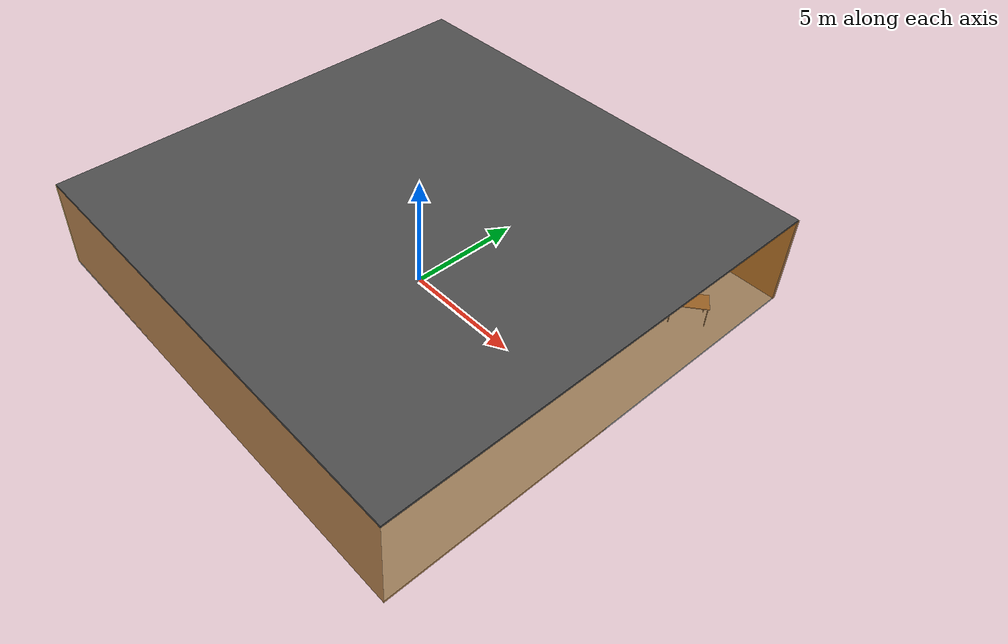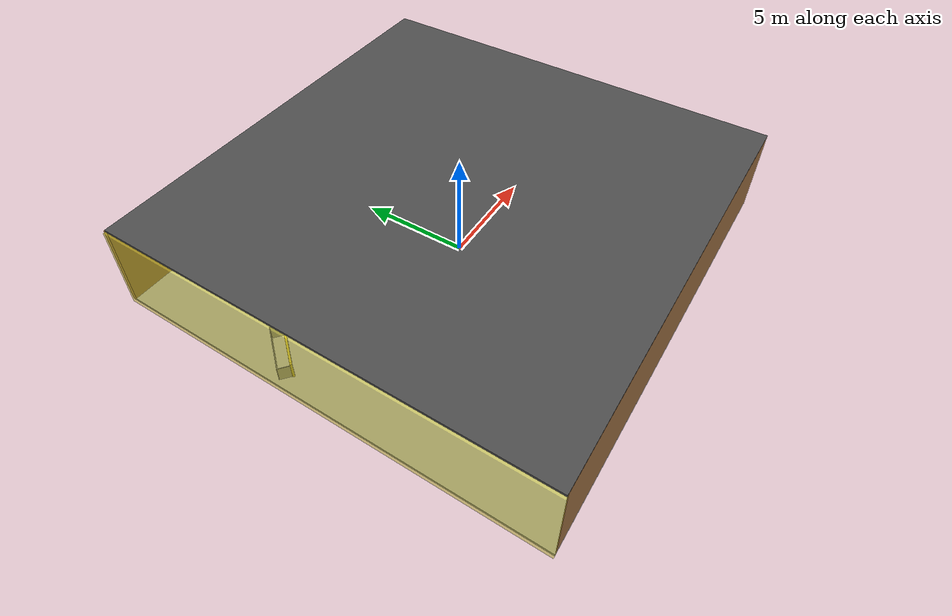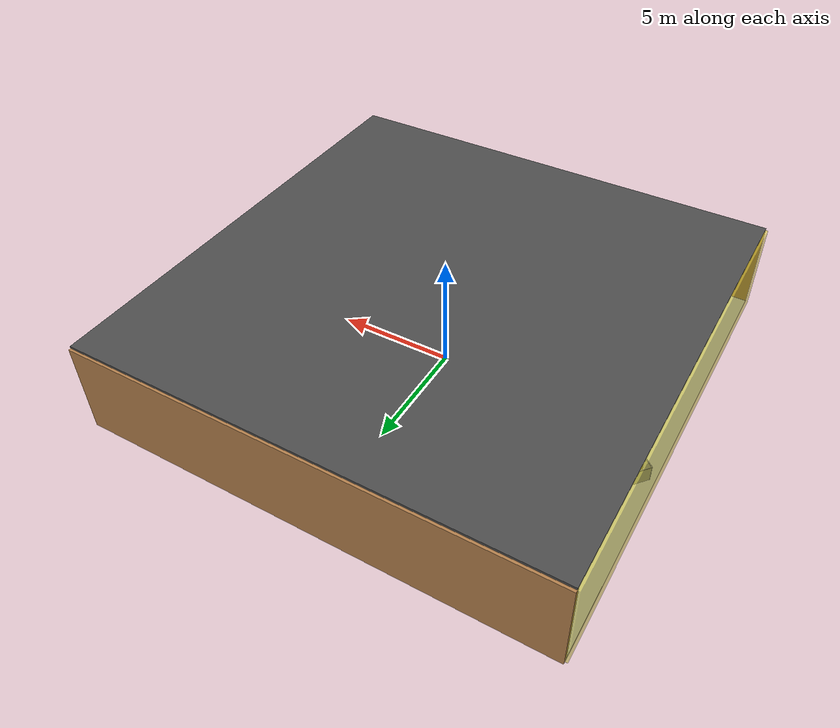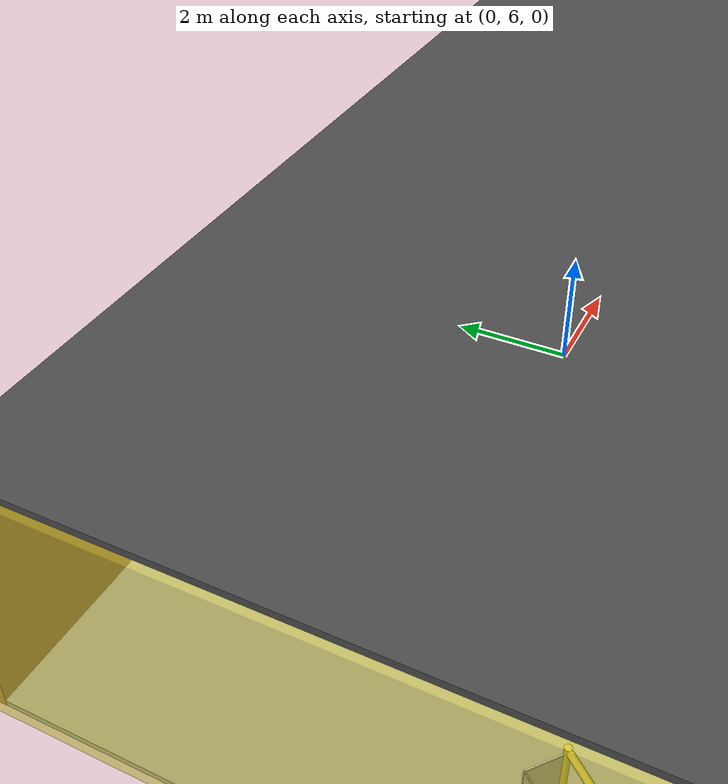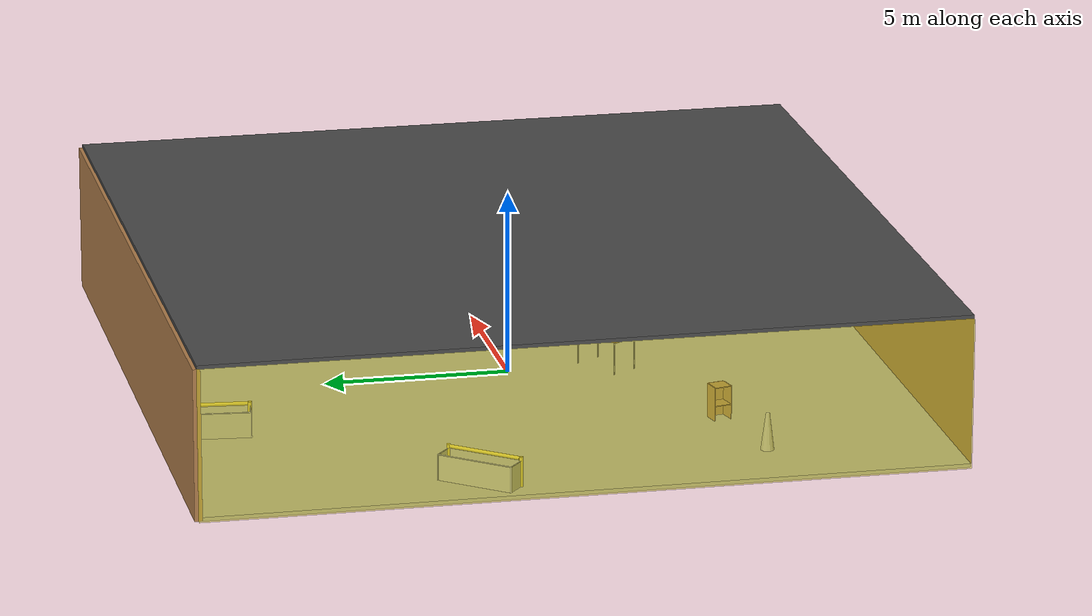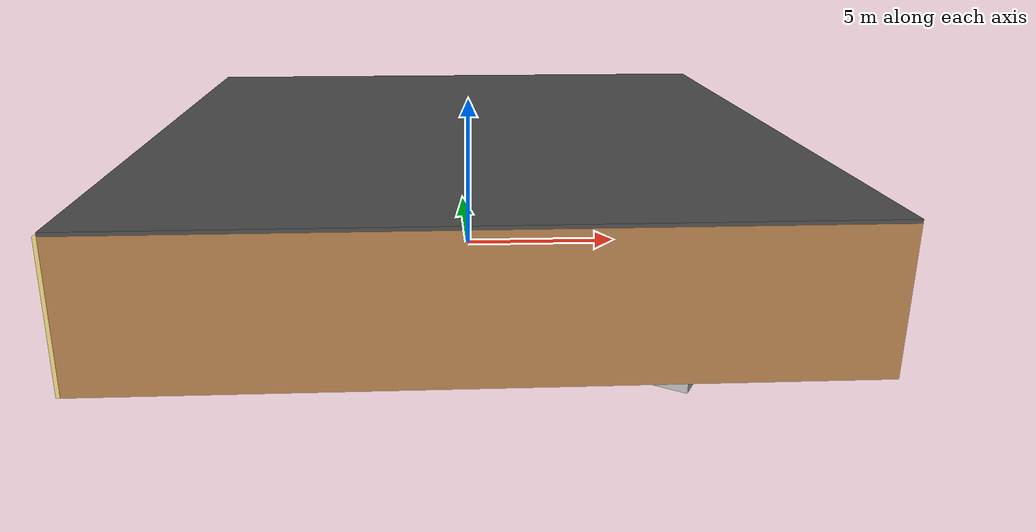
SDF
<sdf version="1.4">
 <world name="default">
  <physics type="ode">
   <max_step_size>0.001</max_step_size>
   <real_time_factor>1</real_time_factor>
   <real_time_update_rate>1000</real_time_update_rate>
   <gravity>0 0 -9.8</gravity>
  </physics>
  <scene><ambient>0.4 0.4 0.4 1</ambient><background>0.7 0.7 0.7 1</background><shadows>1</shadows></scene>
  <model name="Surrounding">
   <static>1</static>
   <link name="Ceiling">
    <collision name="Ceiling_Collision"><geometry><box><size>20 20 0.1</size></box></geometry></collision>
    <visual name="Ceiling_Visual">
     <geometry><box><size>20 20 0.1</size></box></geometry>
     <material>
      <script><uri>file://media/materials/scripts/gazebo.material</uri><name>Gazebo/DarkGrey</name></script>
     </material>
    </visual>
    <pose>0 0 4.05 0 0 0</pose>
   </link>
   <link name="Wall_South">
    <collision name="Wall_South_Collision">
     <geometry><box><size>20 0 4</size></box></geometry>
     <pose>0 0 2 0 -0 0</pose>
    </collision>
    <visual name="Wall_South_Visual">
     <pose>0 0 2 0 -0 0</pose>
     <geometry><box><size>20 0 4</size></box></geometry>
     <material>
      <script><uri>file://media/materials/scripts/gazebo.material</uri><name>Gazebo/WoodPallet</name></script>
     </material>
    </visual>
    <velocity_decay><linear>0</linear><angular>0</angular></velocity_decay>
    <pose>0 -10 0 0 -0 0</pose>
   </link>
   <link name="Wall_East">
    <collision name="Wall_21_Collision">
     <geometry><box><size>20 0 4</size></box></geometry>
     <pose>0 0 2 0 -0 0</pose>
    </collision>
    <visual name="Wall_21_Visual">
     <pose>0 0 2 0 -0 0</pose>
     <geometry><box><size>20 0 4</size></box></geometry>
     <material>
      <script>
       <uri>file://media/materials/scripts/gazebo.material</uri>
       <name>Gazebo/OrangeTransparent</name>
      </script>
     </material>
    </visual>
    <velocity_decay><linear>0</linear><angular>0</angular></velocity_decay>
    <pose>10 0 0 0 -0 1.5708</pose>
   </link>
   <link name="Wall_North">
    <collision name="Wall_22_Collision">
     <geometry><box><size>20 0.2 4</size></box></geometry>
     <pose>0 0 2 0 -0 0</pose>
    </collision>
    <visual name="Wall_22_Visual">
     <pose>0 0 2 0 -0 0</pose>
     <geometry><box><size>20 0.2 4</size></box></geometry>
     <material>
      <script><uri>file://media/materials/scripts/gazebo.material</uri><name>Gazebo/Wood</name></script>
     </material>
    </visual>
    <velocity_decay><linear>0</linear><angular>0</angular></velocity_decay>
    <pose>0 10 0 0 -0 0</pose>
   </link>
   <link name="Wall_West">
    <collision name="Wall_23_Collision">
     <geometry><box><size>20 0.2 4</size></box></geometry>
     <pose>0 0 2 0 -0 0</pose>
    </collision>
    <visual name="Wall_23_Visual">
     <pose>0 0 2 0 -0 0</pose>
     <geometry><box><size>20 0.2 4</size></box></geometry>
     <material>
      <script>
       <uri>file://media/materials/scripts/gazebo.material</uri>
       <name>Gazebo/YellowTransparent</name>
      </script>
     </material>
    </visual>
    <velocity_decay><linear>0</linear><angular>0</angular></velocity_decay>
    <pose>-10 0 0 0 0 -1.5708</pose>
   </link>
   <link name="Ground_link">
    <collision name="collision">
     <pose>0 0 .05 0 -0 0</pose>
     <geometry><box><size>20 20 0.1</size></box></geometry>
    </collision>
    <visual name="visual">
     <pose>0 0 .05 0 -0 0</pose>
     <geometry><box><size>20 20 0.1</size></box></geometry>
     <material>
      <script><uri>file://media/materials/scripts/gazebo.material</uri><name>Gazebo/LightOff</name></script>
     </material>
    </visual>
   </link>
   <static>1</static>
  </model>
  <spherical_coordinates>
   <surface_model>EARTH_WGS84</surface_model>
   <latitude_deg>0</latitude_deg>
   <longitude_deg>0</longitude_deg>
   <elevation>0</elevation>
   <heading_deg>0</heading_deg>
  </spherical_coordinates>
  <light name="lightball_0" type="diffuse">
   <diffuse>0.8 0.8 0.8 1</diffuse>
   <specular>0.2 0.2 0.2 1</specular>
   <attenuation>
    <range>100</range>
    <constant>0.7</constant>
    <linear>0.01</linear>
    <quadratic>0.001</quadratic>
   </attenuation>
   <direction>-0.5 0.1 -0.9</direction>
   <pose>-4.06896714524 8.41532890344 1.04624083747 0 0 0</pose>
  </light>
  <light name="lightball_1" type="diffuse">
   <diffuse>0.8 0.8 0.8 1</diffuse>
   <specular>0.2 0.2 0.2 1</specular>
   <attenuation>
    <range>100</range>
    <constant>0.7</constant>
    <linear>0.01</linear>
    <quadratic>0.001</quadratic>
   </attenuation>
   <direction>-0.5 0.1 -0.9</direction>
   <pose>-3.19766852824 4.1284093374 1.09519628933 0 0 0</pose>
  </light>
  <light name="lightball_2" type="diffuse">
   <diffuse>0.8 0.8 0.8 1</diffuse>
   <specular>0.2 0.2 0.2 1</specular>
   <attenuation>
    <range>100</range>
    <constant>0.7</constant>
    <linear>0.01</linear>
    <quadratic>0.001</quadratic>
   </attenuation>
   <direction>-0.5 0.1 -0.9</direction>
   <pose>-3.22161986519 1.20176160218 3.89264129833 0 0 0</pose>
  </light>
  <light name="lightball_3" type="diffuse">
   <diffuse>0.8 0.8 0.8 1</diffuse>
   <specular>0.2 0.2 0.2 1</specular>
   <attenuation>
    <range>100</range>
    <constant>0.7</constant>
    <linear>0.01</linear>
    <quadratic>0.001</quadratic>
   </attenuation>
   <direction>-0.5 0.1 -0.9</direction>
   <pose>4.51430668633 -0.884402869314 3.37503767555 0 0 0</pose>
  </light>
  <light name="lightball_4" type="diffuse">
   <diffuse>0.8 0.8 0.8 1</diffuse>
   <specular>0.2 0.2 0.2 1</specular>
   <attenuation>
    <range>100</range>
    <constant>0.7</constant>
    <linear>0.01</linear>
    <quadratic>0.001</quadratic>
   </attenuation>
   <direction>-0.5 0.1 -0.9</direction>
   <pose>-7.76599096405 -8.67169704756 2.47941937292 0 0 0</pose>
  </light>
  <light name="lightball_5" type="diffuse">
   <diffuse>0.8 0.8 0.8 1</diffuse>
   <specular>0.2 0.2 0.2 1</specular>
   <attenuation>
    <range>100</range>
    <constant>0.7</constant>
    <linear>0.01</linear>
    <quadratic>0.001</quadratic>
   </attenuation>
   <direction>-0.5 0.1 -0.9</direction>
   <pose>-8.26526760276 3.20713984859 1.45779214768 0 0 0</pose>
  </light>
  <light name="lightball_6" type="diffuse">
   <diffuse>0.8 0.8 0.8 1</diffuse>
   <specular>0.2 0.2 0.2 1</specular>
   <attenuation>
    <range>100</range>
    <constant>0.7</constant>
    <linear>0.01</linear>
    <quadratic>0.001</quadratic>
   </attenuation>
   <direction>-0.5 0.1 -0.9</direction>
   <pose>7.75976912909 -2.87404445419 3.40953695094 0 0 0</pose>
  </light>
  <light name="lightball_7" type="diffuse">
   <diffuse>0.8 0.8 0.8 1</diffuse>
   <specular>0.2 0.2 0.2 1</specular>
   <attenuation>
    <range>100</range>
    <constant>0.7</constant>
    <linear>0.01</linear>
    <quadratic>0.001</quadratic>
   </attenuation>
   <direction>-0.5 0.1 -0.9</direction>
   <pose>7.52156724053 -5.74891574805 3.11572056212 0 0 0</pose>
  </light>
  <light name="lightball_8" type="diffuse">
   <diffuse>0.8 0.8 0.8 1</diffuse>
   <specular>0.2 0.2 0.2 1</specular>
   <attenuation>
    <range>100</range>
    <constant>0.7</constant>
    <linear>0.01</linear>
    <quadratic>0.001</quadratic>
   </attenuation>
   <direction>-0.5 0.1 -0.9</direction>
   <pose>8.04763595521 -9.22636080434 3.61454102092 0 0 0</pose>
  </light>
  <light name="lightball_9" type="diffuse">
   <diffuse>0.8 0.8 0.8 1</diffuse>
   <specular>0.2 0.2 0.2 1</specular>
   <attenuation>
    <range>100</range>
    <constant>0.7</constant>
    <linear>0.01</linear>
    <quadratic>0.001</quadratic>
   </attenuation>
   <direction>-0.5 0.1 -0.9</direction>
   <pose>6.39658781701 0.10006586066 2.25655764224 0 0 0</pose>
  </light>
  <include>
   <uri>model://construction_cone</uri>
   <pose>-7.84589515722 -5.17408202759 0 0 0 0.157727965774</pose>
  </include>
  <include>
   <uri>model://robocup_3Dsim_goal</uri>
   <pose>-8.68586675254 2.43327526344 0 0 0 2.44960837692</pose>
  </include>
  <include><uri>model://cabinet</uri><pose>-5.13814316064 -4.56182090759 0 0 0 0.224749917792</pose></include>
  <include>
   <uri>model://robocup_3Dsim_goal</uri>
   <pose>-3.53573409829 8.66784819113 0 0 0 3.04931890924</pose>
  </include>
  <include><uri>model://table</uri><pose>-0.30125397318 -2.61402562049 0 0 0 0.572818906573</pose></include>
  <include><uri>model://cabinet</uri><pose>2.36665077463 1.30697848226 0 0 0 0.185313037328</pose></include>
  <include>
   <uri>model://textured_shapes</uri>
   <pose>3.51271538409 -8.11894470569 0 0 0 1.02059379756</pose>
  </include>
  <include><uri>model://table</uri><pose>8.40966439276 6.43610155337 0 0 0 0.6870939135</pose></include>
 </world>
</sdf>

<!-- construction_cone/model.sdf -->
<sdf version="1.5">
  <model name="Construction Cone">
    <link name="link">
      <collision name="collision">
        <geometry>
          <mesh>
            <scale>10 10 10</scale>
            <uri>file://isr-testbed/construction_cone/meshes/construction_cone.dae</uri>
          </mesh>
        </geometry>
      </collision>
      <visual name="visual">
        <geometry>
          <mesh>
            <scale>10 10 10</scale>
            <uri>file://isr-testbed/construction_cone/meshes/construction_cone.dae</uri>
          </mesh>
        </geometry>
      </visual>
    </link>
  </model>
</sdf>

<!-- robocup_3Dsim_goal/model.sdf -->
<sdf version="1.5">
  <model name="robocup_3d_goal">
    <static>true</static>
    <link name="left_post">
      <pose>0 1.05 0.45 0 0 0</pose>
      <collision name="collision">
        <geometry>
          <cylinder>
            <radius>0.05</radius>
            <length>0.9</length>
          </cylinder>
        </geometry>
      </collision>
      <visual name="visual">
        <geometry>
          <cylinder>
            <radius>0.05</radius>
            <length>0.9</length>
          </cylinder>
        </geometry>
        <material>
          <script>
            <uri>file://media/materials/scripts/gazebo.material</uri>
            <name>Gazebo/ZincYellow</name>
          </script>
        </material>
      </visual>
    </link>
    <link name="left_support_horiz_lower">
      <pose>0.30 1.05 0.01 0 0 0</pose>
      <collision name="collision">
        <geometry>
          <box>
            <size>0.50 0.02 0.02</size>
          </box>
        </geometry>
      </collision>
      <visual name="visual">
        <geometry>
          <box>
            <size>0.50 0.02 0.02</size>
          </box>
        </geometry>
        <material>
          <script>
            <uri>file://media/materials/scripts/gazebo.material</uri>
            <name>Gazebo/White</name>
          </script>
        </material>
      </visual>
    </link>
    <link name="left_support_horiz_upper">
      <pose>0.30 1.05 0.79 0 0 0</pose>
      <collision name="collision">
        <geometry>
          <box>
            <size>0.50 0.02 0.02</size>
          </box>
        </geometry>
      </collision>
      <visual name="visual">
        <geometry>
          <box>
            <size>0.50 0.02 0.02</size>
          </box>
        </geometry>
        <material>
          <script>
            <uri>file://media/materials/scripts/gazebo.material</uri>
            <name>Gazebo/White</name>
          </script>
        </material>
      </visual>
    </link>
    <link name="left_support_vertical">
      <pose>0.56 1.05 0.4 0 1.5708 0</pose>
      <collision name="collision">
        <geometry>
          <box>
            <size>0.80 0.02 0.02</size>
          </box>
        </geometry>
      </collision>
      <visual name="visual">
        <geometry>
          <box>
            <size>0.80 0.02 0.02</size>
          </box>
        </geometry>
        <material>
          <script>
            <uri>file://media/materials/scripts/gazebo.material</uri>
            <name>Gazebo/White</name>
          </script>
        </material>
      </visual>
    </link>
    <link name="right_support_horiz_lower">
      <pose>0.30 -1.05 0.01 0 0 0</pose>
      <collision name="collision">
        <geometry>
          <box>
            <size>0.50 0.02 0.02</size>
          </box>
        </geometry>
      </collision>
      <visual name="visual">
        <geometry>
          <box>
            <size>0.50 0.02 0.02</size>
          </box>
        </geometry>
        <material>
          <script>
            <uri>file://media/materials/scripts/gazebo.material</uri>
            <name>Gazebo/White</name>
          </script>
        </material>
      </visual>
    </link>
    <link name="right_support_horiz_upper">
      <pose>0.30 -1.05 0.79 0 0 0</pose>
      <collision name="collision">
        <geometry>
          <box>
            <size>0.50 0.02 0.02</size>
          </box>
        </geometry>
      </collision>
      <visual name="visual">
        <geometry>
          <box>
            <size>0.50 0.02 0.02</size>
          </box>
        </geometry>
        <material>
          <script>
            <uri>file://media/materials/scripts/gazebo.material</uri>
            <name>Gazebo/White</name>
          </script>
        </material>
      </visual>
    </link>
    <link name="right_support_vertical">
      <pose>0.56 -1.05 0.4 0 1.5708 0</pose>
      <collision name="collision">
        <geometry>
          <box>
            <size>0.80 0.02 0.02</size>
          </box>
        </geometry>
      </collision>
      <visual name="visual">
        <geometry>
          <box>
            <size>0.80 0.02 0.02</size>
          </box>
        </geometry>
        <material>
          <script>
            <uri>file://media/materials/scripts/gazebo.material</uri>
            <name>Gazebo/White</name>
          </script>
        </material>
      </visual>
    </link>
    <link name="center_support_horiz_lower">
      <pose>0.56 0 0.01 0 1.5708 0</pose>
      <collision name="collision">
        <geometry>
          <box>
            <size>0.02 2.08 0.02</size>
          </box>
        </geometry>
      </collision>
      <visual name="visual">
        <geometry>
          <box>
            <size>0.02 2.08 0.02</size>
          </box>
        </geometry>
        <material>
          <script>
            <uri>file://media/materials/scripts/gazebo.material</uri>
            <name>Gazebo/White</name>
          </script>
        </material>
      </visual>
    </link>
    <link name="center_support_horiz_upper">
      <pose>0.56 0 0.79 0 1.5708 0</pose>
      <collision name="collision">
        <geometry>
          <box>
            <size>0.02 2.08 0.02</size>
          </box>
        </geometry>
      </collision>
      <visual name="visual">
        <geometry>
          <box>
            <size>0.02 2.08 0.02</size>
          </box>
        </geometry>
        <material>
          <script>
            <uri>file://media/materials/scripts/gazebo.material</uri>
            <name>Gazebo/White</name>
          </script>
        </material>
      </visual>
    </link>
    <link name="right_post">
      <pose>0 -1.05 0.45 0 0 0</pose>
      <collision name="collision">
        <geometry>
          <cylinder>
            <radius>0.05</radius>
            <length>0.9</length>
          </cylinder>
        </geometry>
      </collision>
      <visual name="visual">
        <geometry>
          <cylinder>
            <radius>0.05</radius>
            <length>0.9</length>
          </cylinder>
        </geometry>
        <material>
          <script>
            <uri>file://media/materials/scripts/gazebo.material</uri>
            <name>Gazebo/ZincYellow</name>
          </script>
        </material>
      </visual>
    </link>
    <link name="crossbar">
      <pose>0 0 0.85 1.57 1.57 0</pose>
      <collision name="collision">
        <geometry>
          <cylinder>
            <radius>0.05</radius>
            <length>2.0</length>
          </cylinder>
        </geometry>
      </collision>
      <visual name="visual">
        <geometry>
          <cylinder>
            <radius>0.05</radius>
            <length>2.0</length>
          </cylinder>
        </geometry>
        <material>
          <script>
            <uri>file://media/materials/scripts/gazebo.material</uri>
            <name>Gazebo/ZincYellow</name>
          </script>
        </material>
      </visual>
    </link>
    <link name="center_net">
      <pose>0.56 0 0.40 0 0 0</pose>
      <collision name="collision">
        <geometry>
          <box>
            <size>0.01 2.1 0.80</size>
          </box>
        </geometry>
      </collision>
      <visual name="visual">
        <geometry>
          <box>
            <size>0.01 2.1 0.80</size>
          </box>
        </geometry>
        <material>
          <script>
            <uri>model://../model_source/models/robocup09_spl_field/materials/scripts/</uri>
            <uri>model://../model_source/models/robocup09_spl_field/materials/textures/</uri>
            <name>RoboCup/Net</name>
          </script>
        </material>
      </visual>
    </link>
    <link name="left_net">
      <pose>0.30 1.05 0.40 0 0 0</pose>
      <collision name="collision">
        <geometry>
          <box>
            <size>0.50 0.01 0.76</size>
          </box>
        </geometry>
      </collision>
      <visual name="visual">
        <geometry>
          <box>
            <size>0.50 0.01 0.76</size>
          </box>
        </geometry>
        <material>
          <script>
            <uri>model://../model_source/models/robocup09_spl_field/materials/scripts/</uri>
            <uri>model://../model_source/models/robocup09_spl_field/materials/textures/</uri>
            <name>RoboCup/Net</name>
          </script>
        </material>
      </visual>
    </link>
    <link name="right_net">
      <pose>0.30 -1.05 0.40 0 0 0</pose>
      <collision name="collision">
        <geometry>
          <box>
            <size>0.50 0.01 0.76</size>
          </box>
        </geometry>
      </collision>
      <visual name="visual">
        <geometry>
          <box>
            <size>0.50 0.01 0.76</size>
          </box>
        </geometry>
        <material>
          <script>
            <uri>model://../model_source/models/robocup09_spl_field/materials/scripts/</uri>
            <uri>model://../model_source/models/robocup09_spl_field/materials/textures/</uri>
            <name>RoboCup/Net</name>
          </script>
        </material>
      </visual>
    </link>
  </model>
</sdf>

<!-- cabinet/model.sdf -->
<sdf version="1.5">
  <model name="cabinet">
    <static>true</static>
    <link name="cabinet_bottom_plate">
      <inertial>
        <pose>0 0 -1 0 0 0</pose>
        <inertia>
          <ixx>2.050000</ixx>
          <ixy>0</ixy>
          <ixz>0</ixz>
          <iyy>2.050000</iyy>
          <iyz>0</iyz>
          <izz>2.050000</izz>
        </inertia>
        <mass>25.000000</mass>
      </inertial>
      <collision name="cabinet_bottom_plate_geom">
        <pose>0 0 0.010000 0 0 0</pose>
        <geometry>
          <box>
            <size>0.450000 0.450000 0.020000</size>
          </box>
        </geometry>
      </collision>
      <visual name="cabinet_bottom_plate_geom_visual">
        <pose>0 0 0.010000 0 0 0</pose>
        <geometry>
          <box>
            <size>0.450000 0.450000 0.020000</size>
          </box>
        </geometry>
        <material>
          <script>
            <uri>model://media/materials/scripts/gazebo.material</uri>
            <name>Gazebo/Wood</name>
          </script>
        </material>
      </visual>
      <collision name="cabinet_bottom_plate_geom_cabinet_back_plate">
        <pose>0.235000 0 0.510000 0 0 0</pose>
        <geometry>
          <box>
            <size>0.020000 0.450000 1.020000</size>
          </box>
        </geometry>
      </collision>
      <visual name="cabinet_bottom_plate_geom_cabinet_back_plate_visual">
        <pose>0.235000 0 0.510000 0 0 0</pose>
        <geometry>
          <box>
            <size>0.020000 0.450000 1.020000</size>
          </box>
        </geometry>
        <material>
          <script>
            <uri>model://media/materials/scripts/gazebo.material</uri>
            <name>Gazebo/Wood</name>
          </script>
        </material>
      </visual>
      <collision name="cabinet_bottom_plate_geom_cabinet_left_plate">
        <pose>0 0.235000 0.510000 0 0 0</pose>
        <geometry>
          <box>
            <size>0.450000 0.020000 1.020000</size>
          </box>
        </geometry>
      </collision>
      <visual name="cabinet_bottom_plate_geom_cabinet_left_plate_visual">
        <pose>0 0.235000 0.510000 0 0 0</pose>
        <geometry>
          <box>
            <size>0.450000 0.020000 1.020000</size>
          </box>
        </geometry>
        <material>
          <script>
            <uri>model://media/materials/scripts/gazebo.material</uri>
            <name>Gazebo/Wood</name>
          </script>
        </material>
      </visual>
      <collision name="cabinet_bottom_plate_geom_cabinet_middle_plate">
        <pose>0 0 0.510000 0 0 0</pose>
        <geometry>
          <box>
            <size>0.450000 0.450000 0.020000</size>
          </box>
        </geometry>
      </collision>
      <visual name="cabinet_bottom_plate_geom_cabinet_middle_plate_visual">
        <pose>0 0 0.510000 0 0 0</pose>
        <geometry>
          <box>
            <size>0.450000 0.450000 0.020000</size>
          </box>
        </geometry>
        <material>
          <script>
            <uri>model://media/materials/scripts/gazebo.material</uri>
            <name>Gazebo/Wood</name>
          </script>
        </material>
      </visual>
      <collision name="cabinet_bottom_plate_geom_cabinet_right_plate">
        <pose>0 -0.235000 0.510000 0 0 0</pose>
        <geometry>
          <box>
            <size>0.450000 0.020000 1.020000</size>
          </box>
        </geometry>
      </collision>
      <visual name="cabinet_bottom_plate_geom_cabinet_right_plate_visual">
        <pose>0 -0.235000 0.510000 0 0 0</pose>
        <geometry>
          <box>
            <size>0.450000 0.020000 1.020000</size>
          </box>
        </geometry>
        <material>
          <script>
            <uri>model://media/materials/scripts/gazebo.material</uri>
            <name>Gazebo/Wood</name>
          </script>
        </material>
      </visual>
      <collision name="cabinet_bottom_plate_geom_cabinet_top_plate">
        <pose>0 0 1.010000 0 0 0</pose>
        <geometry>
          <box>
            <size>0.450000 0.450000 0.020000</size>
          </box>
        </geometry>
      </collision>
      <visual name="cabinet_bottom_plate_geom_cabinet_top_plate_visual">
        <pose>0 0 1.010000 0 0 0</pose>
        <geometry>
          <box>
            <size>0.450000 0.450000 0.020000</size>
          </box>
        </geometry>
        <material>
          <script>
            <uri>model://media/materials/scripts/gazebo.material</uri>
            <name>Gazebo/Wood</name>
          </script>
        </material>
      </visual>
    </link>
  </model>
</sdf>

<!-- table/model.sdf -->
<sdf version="1.5">
  <model name="table">
    <static>true</static>
    <link name="link">
      <collision name="surface">
        <pose>0 0 1.0 0 0 0</pose>
        <geometry>
          <box>
            <size>1.5 0.8 0.03</size>
          </box>
        </geometry>
        <surface>
          <friction>
            <ode>
              <mu>0.6</mu>
              <mu2>0.6</mu2>
            </ode>
          </friction>
        </surface>
      </collision>
      <visual name="visual1">
        <pose>0 0 1.0 0 0 0</pose>
        <geometry>
          <box>
            <size>1.5 0.8 0.03</size>
          </box>
        </geometry>
        <material>
          <script>
            <uri>model://media/materials/scripts/gazebo.material</uri>
            <name>Gazebo/Wood</name>
          </script>
        </material>
      </visual>
      <collision name="front_left_leg">
        <pose>0.68 0.38 0.5 0 0 0</pose>
        <geometry>
          <cylinder>
            <radius>0.02</radius>
            <length>1.0</length>
          </cylinder>
        </geometry>
      </collision>
      <visual name="front_left_leg">
        <pose>0.68 0.38 0.5 0 0 0</pose>
        <geometry>
          <cylinder>
            <radius>0.02</radius>
            <length>1.0</length>
          </cylinder>
        </geometry>
        <material>
          <script>
            <uri>model://media/materials/scripts/gazebo.material</uri>
            <name>Gazebo/Grey</name>
          </script>
        </material>
      </visual>
      <collision name="front_right_leg">
        <pose>0.68 -0.38 0.5 0 0 0</pose>
        <geometry>
          <cylinder>
            <radius>0.02</radius>
            <length>1.0</length>
          </cylinder>
        </geometry>
      </collision>
      <visual name="front_right_leg">
        <pose>0.68 -0.38 0.5 0 0 0</pose>
        <geometry>
          <cylinder>
            <radius>0.02</radius>
            <length>1.0</length>
          </cylinder>
        </geometry>
        <material>
          <script>
            <uri>model://media/materials/scripts/gazebo.material</uri>
            <name>Gazebo/Grey</name>
          </script>
        </material>
      </visual>
      <collision name="back_right_leg">
        <pose>-0.68 -0.38 0.5 0 0 0</pose>
        <geometry>
          <cylinder>
            <radius>0.02</radius>
            <length>1.0</length>
          </cylinder>
        </geometry>
      </collision>
      <visual name="back_right_leg">
        <pose>-0.68 -0.38 0.5 0 0 0</pose>
        <geometry>
          <cylinder>
            <radius>0.02</radius>
            <length>1.0</length>
          </cylinder>
        </geometry>
        <material>
          <script>
            <uri>model://media/materials/scripts/gazebo.material</uri>
            <name>Gazebo/Grey</name>
          </script>
        </material>
      </visual>
      <collision name="back_left_leg">
        <pose>-0.68 0.38 0.5 0 0 0</pose>
        <geometry>
          <cylinder>
            <radius>0.02</radius>
            <length>1.0</length>
          </cylinder>
        </geometry>
      </collision>
      <visual name="back_left_leg">
        <pose>-0.68 0.38 0.5 0 0 0</pose>
        <geometry>
          <cylinder>
            <radius>0.02</radius>
            <length>1.0</length>
          </cylinder>
        </geometry>
        <material>
          <script>
            <uri>model://media/materials/scripts/gazebo.material</uri>
            <name>Gazebo/Grey</name>
          </script>
        </material>
      </visual>
    </link>
  </model>
</sdf>

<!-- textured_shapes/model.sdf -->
<sdf version="1.6">
  <model name="textured_shapes">
    <pose>0 0 0.5 0 0 0</pose>
    <link name="box">
      <pose>0 -1.5 0 0 0 0</pose>
      <collision name="collision">
        <geometry>
          <box>
            <size>1 1 1</size>
          </box>
        </geometry>
      </collision>
      <visual name="visual">
        <geometry>
          <box>
            <size>1 1 1</size>
          </box>
        </geometry>
        <material>
          <script>
            <uri>model://../model_source/models/textured_shapes/materials/scripts</uri>
            <uri>model://../model_source/models/textured_shapes/materials/textures</uri>
            <name>TexturedShape/Squares</name>
          </script>
        </material>
      </visual>
    </link>
    <link name="sphere">
      <collision name="collision">
        <geometry>
          <sphere>
            <radius>0.5</radius>
          </sphere>
        </geometry>
      </collision>
      <visual name="visual">
        <geometry>
          <sphere>
            <radius>0.5</radius>
          </sphere>
        </geometry>
        <material>
          <script>
            <uri>model://../model_source/models/textured_shapes/materials/scripts</uri>
            <uri>model://../model_source/models/textured_shapes/materials/textures</uri>
            <name>TexturedShape/Squares</name>
          </script>
        </material>
      </visual>
    </link>
    <link name="cylinder">
      <pose>0 1.5 0 0 0 0</pose>
      <collision name="collision">
        <geometry>
          <cylinder>
            <radius>0.5</radius>
            <length>1</length>
          </cylinder>
        </geometry>
      </collision>
      <visual name="visual">
        <geometry>
          <cylinder>
            <radius>0.5</radius>
            <length>1</length>
          </cylinder>
        </geometry>
        <material>
          <script>
            <uri>model://../model_source/models/textured_shapes/materials/scripts</uri>
            <uri>model://../model_source/models/textured_shapes/materials/textures</uri>
            <name>TexturedShape/Squares</name>
          </script>
        </material>
      </visual>
    </link>
  </model>
</sdf>
